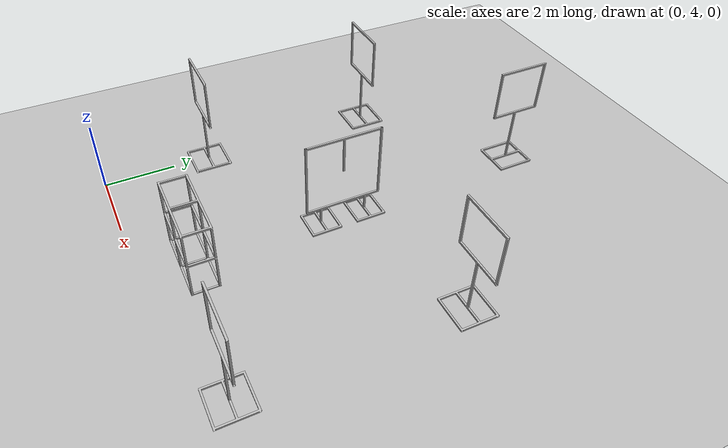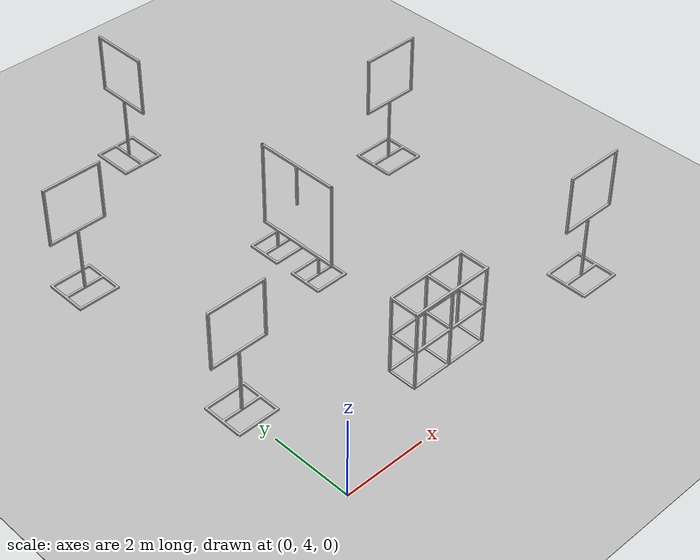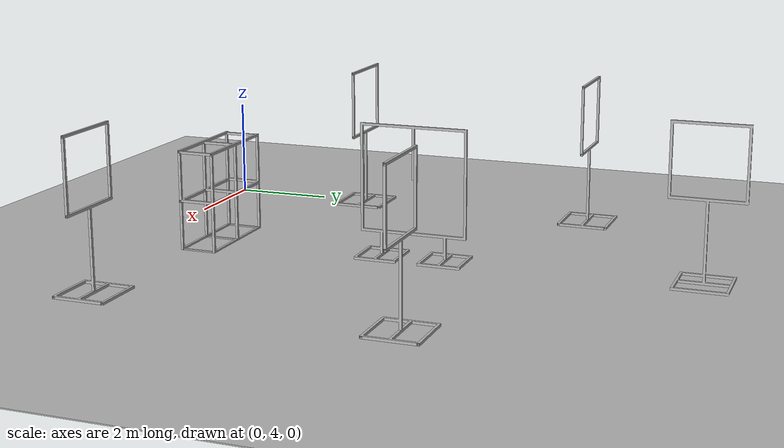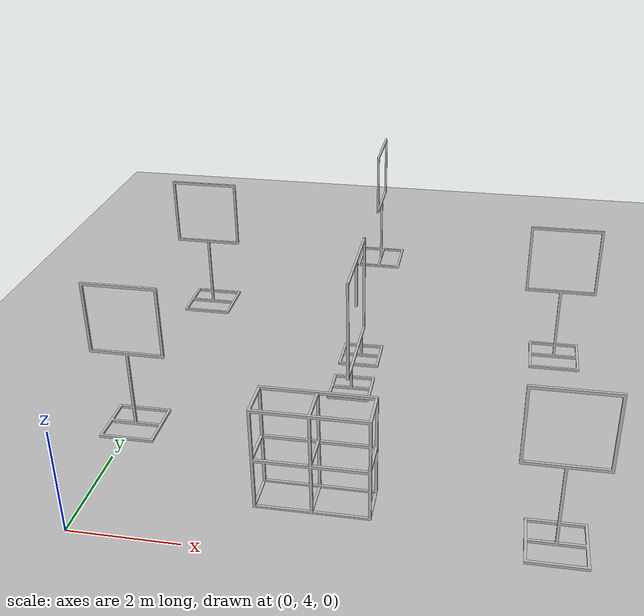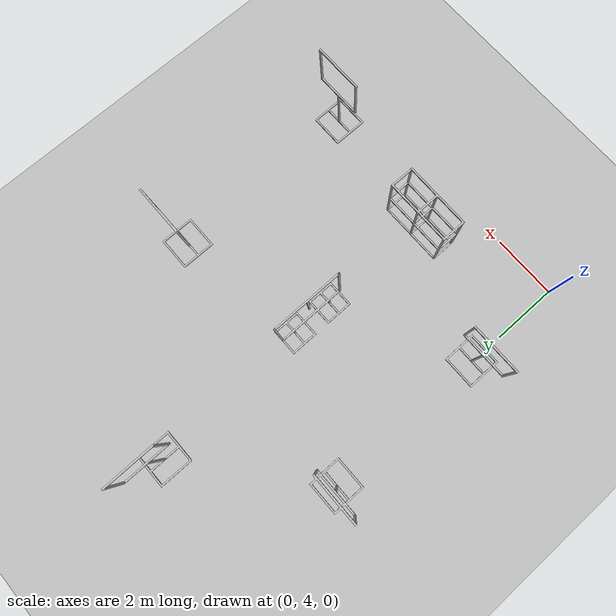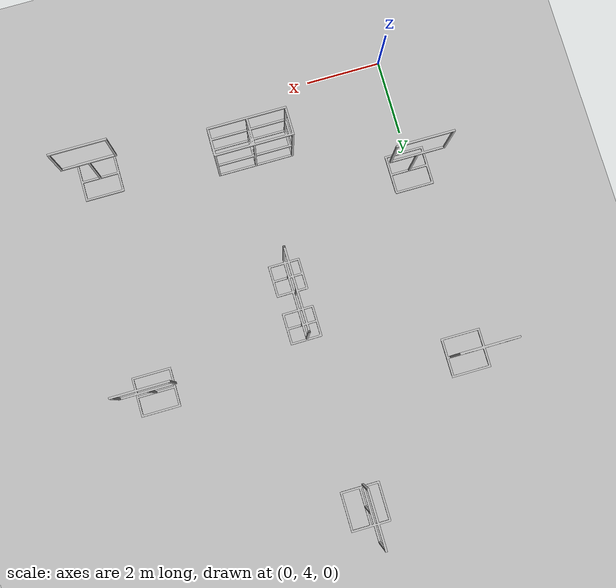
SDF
<sdf version="1.6">
 <world name="default">
  <light name="sun" type="directional">
   <pose>0 0 10 0 -0 0</pose>
   <diffuse>0.8 0.8 0.8 1</diffuse>
   <specular>0.2 0.2 0.2 1</specular>
   <attenuation>
    <range>1000</range>
    <constant>0.9</constant>
    <linear>0.01</linear>
    <quadratic>0.001</quadratic>
   </attenuation>
   <direction>-0.5 0.1 -0.9</direction>
  </light>
  <include><uri>model://parquet_plane</uri><pose>0 0 -0.01 0 0 0</pose></include>
  <gravity>0 0 -9.8</gravity>
  <magnetic_field>6e-06 2.3e-05 -4.2e-05</magnetic_field>
  <atmosphere type="adiabatic"/>
  <physics name="default_physics" default="0" type="ode">
   <max_step_size>0.001</max_step_size>
   <real_time_factor>1</real_time_factor>
   <real_time_update_rate>1000</real_time_update_rate>
  </physics>
  <scene><ambient>0.4 0.4 0.4 1</ambient><background>0.7 0.7 0.7 1</background><shadows>1</shadows></scene>
  <spherical_coordinates>
   <surface_model>EARTH_WGS84</surface_model>
   <latitude_deg>0</latitude_deg>
   <longitude_deg>0</longitude_deg>
   <elevation>0</elevation>
   <heading_deg>0</heading_deg>
  </spherical_coordinates>
  <model name="dronerace gate 2018">
   <static>1</static>
   <pose>0.053049 7.04868 -0 0 -0 0</pose>
   <link name="dronerace gate 2018">
    <visual name="gate">
     <geometry><mesh><uri>model://dronerace_gate_2018/normal_gate_2018.dae</uri></mesh></geometry>
    </visual>
    <collision name="gate_collision">
     <geometry><mesh><uri>model://dronerace_gate_2018/normal_gate_2018.dae</uri></mesh></geometry>
    </collision>
   </link>
  </model>
  <model name="dronerace gate 2018_0">
   <static>1</static>
   <pose>0.048314 12.1158 0 0 -0 0</pose>
   <link name="dronerace gate 2018">
    <visual name="gate">
     <geometry><mesh><uri>model://dronerace_gate_2018/normal_gate_2018.dae</uri></mesh></geometry>
    </visual>
    <collision name="gate_collision">
     <geometry><mesh><uri>model://dronerace_gate_2018/normal_gate_2018.dae</uri></mesh></geometry>
    </collision>
   </link>
  </model>
  <model name="dronerace gate 2018_1">
   <static>1</static>
   <pose>3.67542 15.16 0 0 0 -1.56757</pose>
   <link name="dronerace gate 2018">
    <visual name="gate">
     <geometry><mesh><uri>model://dronerace_gate_2018/normal_gate_2018.dae</uri></mesh></geometry>
    </visual>
    <collision name="gate_collision">
     <geometry><mesh><uri>model://dronerace_gate_2018/normal_gate_2018.dae</uri></mesh></geometry>
    </collision>
   </link>
  </model>
  <model name="dronerace gate 2018_2">
   <static>1</static>
   <pose>8.05828 10.8931 0 0 -0 0</pose>
   <link name="dronerace gate 2018">
    <visual name="gate">
     <geometry><mesh><uri>model://dronerace_gate_2018/normal_gate_2018.dae</uri></mesh></geometry>
    </visual>
    <collision name="gate_collision">
     <geometry><mesh><uri>model://dronerace_gate_2018/normal_gate_2018.dae</uri></mesh></geometry>
    </collision>
   </link>
  </model>
  <model name="dronerace gate 2018_3">
   <static>1</static>
   <pose>8.01982 4.99638 0 0 -0 0</pose>
   <link name="dronerace gate 2018">
    <visual name="gate">
     <geometry><mesh><uri>model://dronerace_gate_2018/normal_gate_2018.dae</uri></mesh></geometry>
    </visual>
    <collision name="gate_collision">
     <geometry><mesh><uri>model://dronerace_gate_2018/normal_gate_2018.dae</uri></mesh></geometry>
    </collision>
   </link>
  </model>
  <model name="dronerace gate 2018_4">
   <static>1</static>
   <pose>3.93309 5.09612 0 0 -0 0</pose>
   <link name="dronerace gate 2018">
    <visual name="gate">
     <geometry><mesh><uri>model://dronerace_junglegate_2018/jungle_gate_2018.dae</uri></mesh></geometry>
    </visual>
    <collision name="gate_collision">
     <geometry><mesh><uri>model://dronerace_junglegate_2018/jungle_gate_2018.dae</uri></mesh></geometry>
    </collision>
   </link>
  </model>
  <model name="dronerace dynamic gate 2018">
   <static>1</static>
   <pose>3.9491 9.60242 0 0 -0 1.57829</pose>
   <link name="dronerace dynamic gate 2018">
    <visual name="gate">
     <geometry><mesh><uri>model://dronerace_dynamicgate_2018/dynamic_gate_2018.dae</uri></mesh></geometry>
    </visual>
    <collision name="gate_collision">
     <geometry><mesh><uri>model://dronerace_dynamicgate_2018/dynamic_gate_2018.dae</uri></mesh></geometry>
    </collision>
   </link>
  </model>
 </world>
</sdf>

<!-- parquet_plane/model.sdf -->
<sdf version="1.5">
  <model name="parquet_plane">
    <static>true</static>
    <link name="link">
      <collision name="collision">
        <geometry>
          <box>
            <size>200 200 .02</size>
          </box>
        </geometry>
      </collision>
      <visual name="visual">
        <cast_shadows>false</cast_shadows>
        <geometry>
          <box>
            <size>200 200 .02</size>
          </box>
        </geometry>
        <material>
          <script>
            <uri>model://parquet_plane/materials/scripts</uri>
            <uri>model://parquet_plane/materials/textures</uri>
            <name>parquet</name>
          </script>
        </material>
      </visual>
    </link>
  </model>
</sdf>
